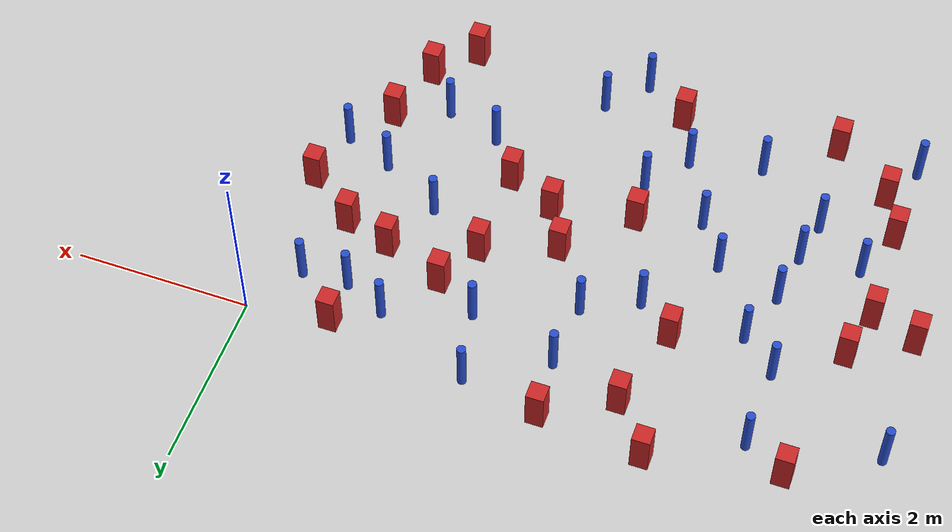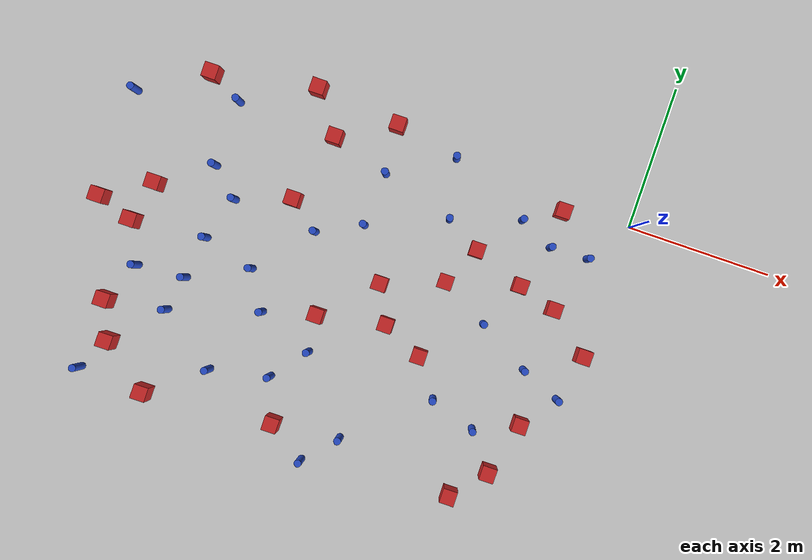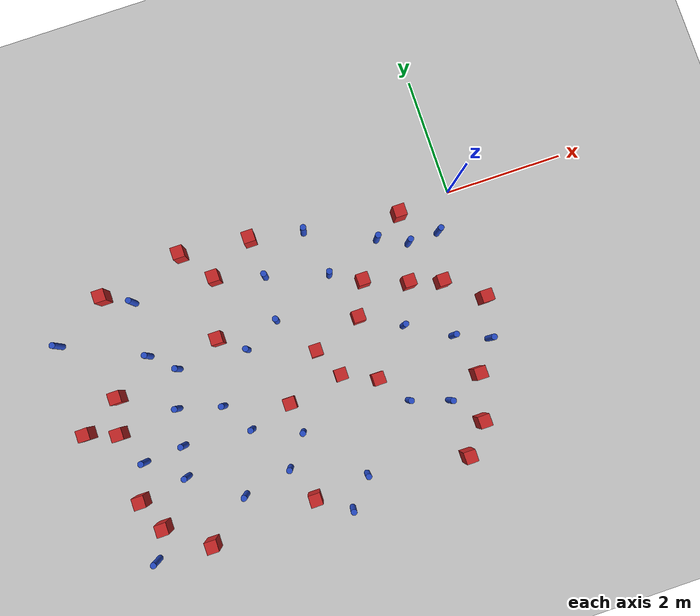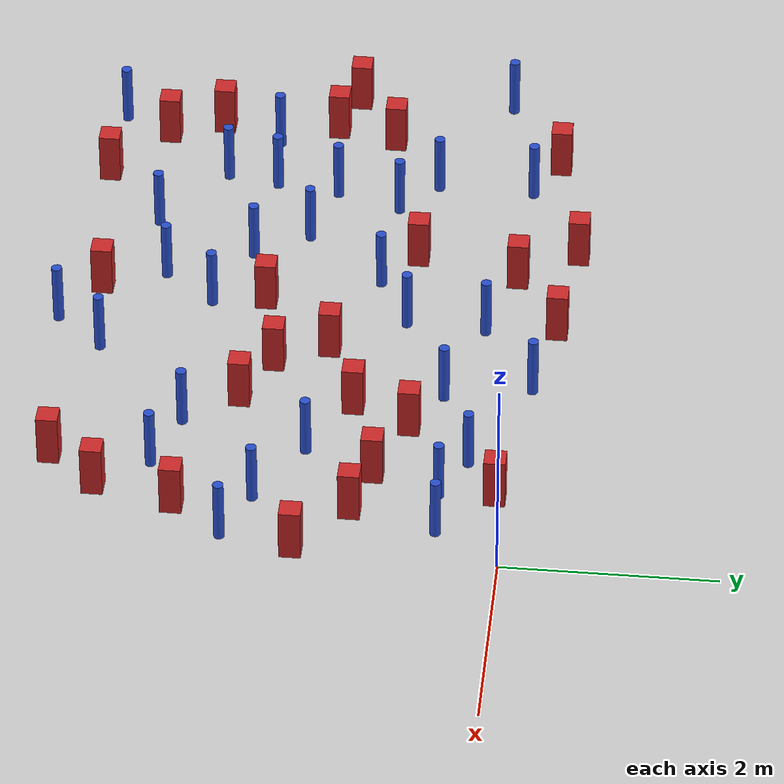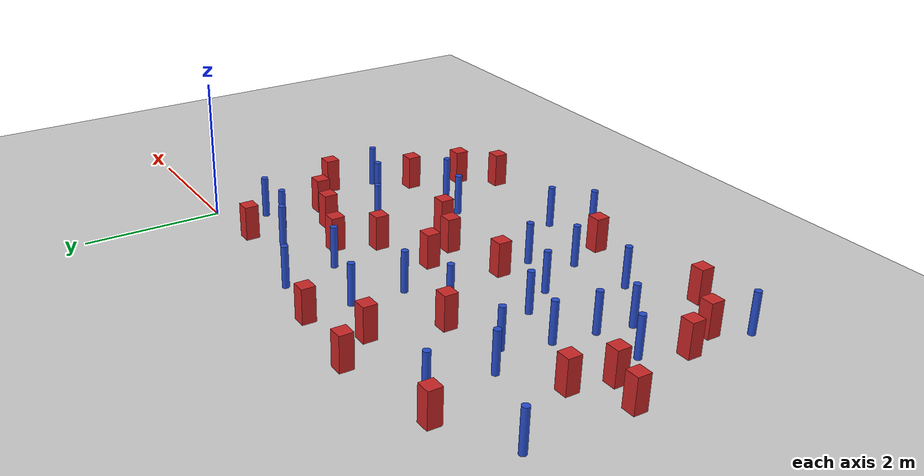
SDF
<sdf version="1.6">
 <world name="default">
  <model name="ground_plane">
   <static>1</static>
   <link name="link">
    <collision name="collision">
     <geometry><plane><normal>0 0 1</normal><size>100 100</size></plane></geometry>
     <surface><friction><ode><mu>100</mu><mu2>50</mu2></ode></friction></surface>
    </collision>
    <visual name="visual">
     <cast_shadows>0</cast_shadows>
     <geometry><plane><normal>0 0 1</normal><size>100 100</size></plane></geometry>
     <material>
      <ambient>1.0 1.0 1.0 1.0</ambient>
      <diffuse>0.8 0.8 0.8 1.0</diffuse>
      <specular>0.01 0.01 0.01 1.000000</specular>
     </material>
    </visual>
   </link>
  </model>
  <model name="pole_obstacle3">
   <static>true</static>
   <pose>-5.39888138162 -2.00570616578 2.88873142074e-08 -9.90536689749e-09 4.60219948991e-07 -1.20965994959e-07</pose>
   <link name="link">
    <pose>0 0 0.3 0 -0 0</pose>
    <inertial>
     <mass>1</mass>
     <inertia><ixx>0.145833</ixx><ixy>0</ixy><ixz>0</ixz><iyy>0.145833</iyy><iyz>0</iyz><izz>0.125</izz></inertia>
    </inertial>
    <collision name="collision">
     <geometry><cylinder><radius>0.05</radius><length>.6</length></cylinder></geometry>
    </collision>
    <visual name="visual">
     <geometry><cylinder><radius>0.05</radius><length>.6</length></cylinder></geometry>
     <material>
      <script><name>Gazebo/Blue</name><uri>file://media/materials/scripts/gazebo.material</uri></script>
     </material>
    </visual>
   </link>
  </model>
  <model name="pole_obstacle4">
   <static>true</static>
   <pose>-1.41537158164 -0.388112318753 2.88873142074e-08 -9.90536689733e-09 4.60219948992e-07 -1.20965994959e-07</pose>
   <link name="link">
    <pose>0 0 0.3 0 -0 0</pose>
    <inertial>
     <mass>1</mass>
     <inertia><ixx>0.145833</ixx><ixy>0</ixy><ixz>0</ixz><iyy>0.145833</iyy><iyz>0</iyz><izz>0.125</izz></inertia>
    </inertial>
    <collision name="collision">
     <geometry><cylinder><radius>0.05</radius><length>.6</length></cylinder></geometry>
    </collision>
    <visual name="visual">
     <geometry><cylinder><radius>0.05</radius><length>.6</length></cylinder></geometry>
     <material>
      <script><name>Gazebo/Blue</name><uri>file://media/materials/scripts/gazebo.material</uri></script>
     </material>
    </visual>
   </link>
  </model>
  <model name="square_post_obstacle3">
   <static>true</static>
   <pose>-3.72602578323 -4.0872533452 8.22691968438e-08 7.2212513382e-06 -7.54495500217e-07 2.29674213826e-05</pose>
   <link name="link">
    <pose>0 0 0.25 0 -0 0</pose>
    <inertial>
     <mass>100</mass>
     <inertia>
      <ixx>0.166667</ixx>
      <ixy>0</ixy>
      <ixz>0</ixz>
      <iyy>0.166667</iyy>
      <iyz>0</iyz>
      <izz>0.166667</izz>
     </inertia>
    </inertial>
    <collision name="collision"><geometry><box><size>.2 .2 .5</size></box></geometry></collision>
    <visual name="visual">
     <geometry><box><size>.2 .2 .5</size></box></geometry>
     <material>
      <script><name>Gazebo/Red</name><uri>file://media/materials/scripts/gazebo.material</uri></script>
     </material>
    </visual>
   </link>
  </model>
  <model name="pole_obstacle10">
   <static>true</static>
   <pose>-0.744563720308 -2.30739177899 2.88873142074e-08 -9.90536689636e-09 4.60219948994e-07 -1.20965994958e-07</pose>
   <link name="link">
    <pose>0 0 0.3 0 -0 0</pose>
    <inertial>
     <mass>1</mass>
     <inertia><ixx>0.145833</ixx><ixy>0</ixy><ixz>0</ixz><iyy>0.145833</iyy><iyz>0</iyz><izz>0.125</izz></inertia>
    </inertial>
    <collision name="collision">
     <geometry><cylinder><radius>0.05</radius><length>.6</length></cylinder></geometry>
    </collision>
    <visual name="visual">
     <geometry><cylinder><radius>0.05</radius><length>.6</length></cylinder></geometry>
     <material>
      <script><name>Gazebo/Blue</name><uri>file://media/materials/scripts/gazebo.material</uri></script>
     </material>
    </visual>
   </link>
  </model>
  <model name="square_post_obstacle11">
   <static>true</static>
   <pose>-2.14693727234 -2.58435467613 8.22691968438e-08 7.2212513382e-06 -7.54495500217e-07 2.29674213826e-05</pose>
   <link name="link">
    <pose>0 0 0.25 0 -0 0</pose>
    <inertial>
     <mass>100</mass>
     <inertia>
      <ixx>0.166667</ixx>
      <ixy>0</ixy>
      <ixz>0</ixz>
      <iyy>0.166667</iyy>
      <iyz>0</iyz>
      <izz>0.166667</izz>
     </inertia>
    </inertial>
    <collision name="collision"><geometry><box><size>.2 .2 .5</size></box></geometry></collision>
    <visual name="visual">
     <geometry><box><size>.2 .2 .5</size></box></geometry>
     <material>
      <script><name>Gazebo/Red</name><uri>file://media/materials/scripts/gazebo.material</uri></script>
     </material>
    </visual>
   </link>
  </model>
  <model name="pole_obstacle15">
   <static>true</static>
   <pose>-2.80426005995 -3.99331555649 2.88873142074e-08 -9.90536690455e-09 4.60219948975e-07 -1.20965994972e-07</pose>
   <link name="link">
    <pose>0 0 0.3 0 -0 0</pose>
    <inertial>
     <mass>1</mass>
     <inertia><ixx>0.145833</ixx><ixy>0</ixy><ixz>0</ixz><iyy>0.145833</iyy><iyz>0</iyz><izz>0.125</izz></inertia>
    </inertial>
    <collision name="collision">
     <geometry><cylinder><radius>0.05</radius><length>.6</length></cylinder></geometry>
    </collision>
    <visual name="visual">
     <geometry><cylinder><radius>0.05</radius><length>.6</length></cylinder></geometry>
     <material>
      <script><name>Gazebo/Blue</name><uri>file://media/materials/scripts/gazebo.material</uri></script>
     </material>
    </visual>
   </link>
  </model>
  <model name="square_post_obstacle12">
   <static>true</static>
   <pose>-1.1600024564 -1.24396540981 8.22691968438e-08 7.2212513382e-06 -7.54495500217e-07 2.29674213826e-05</pose>
   <link name="link">
    <pose>0 0 0.25 0 -0 0</pose>
    <inertial>
     <mass>100</mass>
     <inertia>
      <ixx>0.166667</ixx>
      <ixy>0</ixy>
      <ixz>0</ixz>
      <iyy>0.166667</iyy>
      <iyz>0</iyz>
      <izz>0.166667</izz>
     </inertia>
    </inertial>
    <collision name="collision"><geometry><box><size>.2 .2 .5</size></box></geometry></collision>
    <visual name="visual">
     <geometry><box><size>.2 .2 .5</size></box></geometry>
     <material>
      <script><name>Gazebo/Red</name><uri>file://media/materials/scripts/gazebo.material</uri></script>
     </material>
    </visual>
   </link>
  </model>
  <model name="pole_obstacle16">
   <static>true</static>
   <pose>-6.45074321504 -4.21881022412 2.88873142074e-08 -9.90536690842e-09 4.60219948965e-07 -1.20965994976e-07</pose>
   <link name="link">
    <pose>0 0 0.3 0 -0 0</pose>
    <inertial>
     <mass>1</mass>
     <inertia><ixx>0.145833</ixx><ixy>0</ixy><ixz>0</ixz><iyy>0.145833</iyy><iyz>0</iyz><izz>0.125</izz></inertia>
    </inertial>
    <collision name="collision">
     <geometry><cylinder><radius>0.05</radius><length>.6</length></cylinder></geometry>
    </collision>
    <visual name="visual">
     <geometry><cylinder><radius>0.05</radius><length>.6</length></cylinder></geometry>
     <material>
      <script><name>Gazebo/Blue</name><uri>file://media/materials/scripts/gazebo.material</uri></script>
     </material>
    </visual>
   </link>
  </model>
  <model name="square_post_obstacle13">
   <static>true</static>
   <pose>-0.627202502362 -1.4013469367 8.22691968438e-08 7.2212513382e-06 -7.54495500217e-07 2.29674213826e-05</pose>
   <link name="link">
    <pose>0 0 0.25 0 -0 0</pose>
    <inertial>
     <mass>100</mass>
     <inertia>
      <ixx>0.166667</ixx>
      <ixy>0</ixy>
      <ixz>0</ixz>
      <iyy>0.166667</iyy>
      <iyz>0</iyz>
      <izz>0.166667</izz>
     </inertia>
    </inertial>
    <collision name="collision"><geometry><box><size>.2 .2 .5</size></box></geometry></collision>
    <visual name="visual">
     <geometry><box><size>.2 .2 .5</size></box></geometry>
     <material>
      <script><name>Gazebo/Red</name><uri>file://media/materials/scripts/gazebo.material</uri></script>
     </material>
    </visual>
   </link>
  </model>
  <model name="pole_obstacle25">
   <static>true</static>
   <pose>-5.56865304958 -0.113580184732 2.88873142074e-08 -9.90536689681e-09 4.60219948993e-07 -1.20965994959e-07</pose>
   <link name="link">
    <pose>0 0 0.3 0 -0 0</pose>
    <inertial>
     <mass>1</mass>
     <inertia><ixx>0.145833</ixx><ixy>0</ixy><ixz>0</ixz><iyy>0.145833</iyy><iyz>0</iyz><izz>0.125</izz></inertia>
    </inertial>
    <collision name="collision">
     <geometry><cylinder><radius>0.05</radius><length>.6</length></cylinder></geometry>
    </collision>
    <visual name="visual">
     <geometry><cylinder><radius>0.05</radius><length>.6</length></cylinder></geometry>
     <material>
      <script><name>Gazebo/Blue</name><uri>file://media/materials/scripts/gazebo.material</uri></script>
     </material>
    </visual>
   </link>
  </model>
  <model name="square_post_obstacle23">
   <static>true</static>
   <pose>-5.5193842569 -4.2566935911 8.22691968438e-08 7.2212513382e-06 -7.54495500217e-07 2.29674213826e-05</pose>
   <link name="link">
    <pose>0 0 0.25 0 -0 0</pose>
    <inertial>
     <mass>100</mass>
     <inertia>
      <ixx>0.166667</ixx>
      <ixy>0</ixy>
      <ixz>0</ixz>
      <iyy>0.166667</iyy>
      <iyz>0</iyz>
      <izz>0.166667</izz>
     </inertia>
    </inertial>
    <collision name="collision"><geometry><box><size>.2 .2 .5</size></box></geometry></collision>
    <visual name="visual">
     <geometry><box><size>.2 .2 .5</size></box></geometry>
     <material>
      <script><name>Gazebo/Red</name><uri>file://media/materials/scripts/gazebo.material</uri></script>
     </material>
    </visual>
   </link>
  </model>
  <model name="square_post_obstacle27">
   <static>true</static>
   <pose>-4.17683774603 -0.152954974696 8.22691968438e-08 7.2212513382e-06 -7.54495500217e-07 2.29674213826e-05</pose>
   <link name="link">
    <pose>0 0 0.25 0 -0 0</pose>
    <inertial>
     <mass>100</mass>
     <inertia>
      <ixx>0.166667</ixx>
      <ixy>0</ixy>
      <ixz>0</ixz>
      <iyy>0.166667</iyy>
      <iyz>0</iyz>
      <izz>0.166667</izz>
     </inertia>
    </inertial>
    <collision name="collision"><geometry><box><size>.2 .2 .5</size></box></geometry></collision>
    <visual name="visual">
     <geometry><box><size>.2 .2 .5</size></box></geometry>
     <material>
      <script><name>Gazebo/Red</name><uri>file://media/materials/scripts/gazebo.material</uri></script>
     </material>
    </visual>
   </link>
  </model>
  <model name="square_post_obstacle30">
   <static>true</static>
   <pose>-0.0457896845618 -1.87282870692 8.22691968438e-08 7.2212513382e-06 -7.54495500217e-07 2.29674213826e-05</pose>
   <link name="link">
    <pose>0 0 0.25 0 -0 0</pose>
    <inertial>
     <mass>100</mass>
     <inertia>
      <ixx>0.166667</ixx>
      <ixy>0</ixy>
      <ixz>0</ixz>
      <iyy>0.166667</iyy>
      <iyz>0</iyz>
      <izz>0.166667</izz>
     </inertia>
    </inertial>
    <collision name="collision"><geometry><box><size>.2 .2 .5</size></box></geometry></collision>
    <visual name="visual">
     <geometry><box><size>.2 .2 .5</size></box></geometry>
     <material>
      <script><name>Gazebo/Red</name><uri>file://media/materials/scripts/gazebo.material</uri></script>
     </material>
    </visual>
   </link>
  </model>
  <model name="square_post_obstacle35">
   <static>true</static>
   <pose>-6.42005316863 -2.09950818138 8.22691968438e-08 7.22125133819e-06 -7.54495500217e-07 2.29674213826e-05</pose>
   <link name="link">
    <pose>0 0 0.25 0 -0 0</pose>
    <inertial>
     <mass>100</mass>
     <inertia>
      <ixx>0.166667</ixx>
      <ixy>0</ixy>
      <ixz>0</ixz>
      <iyy>0.166667</iyy>
      <iyz>0</iyz>
      <izz>0.166667</izz>
     </inertia>
    </inertial>
    <collision name="collision"><geometry><box><size>.2 .2 .5</size></box></geometry></collision>
    <visual name="visual">
     <geometry><box><size>.2 .2 .5</size></box></geometry>
     <material>
      <script><name>Gazebo/Red</name><uri>file://media/materials/scripts/gazebo.material</uri></script>
     </material>
    </visual>
   </link>
  </model>
  <model name="pole_obstacle52">
   <static>true</static>
   <pose>-1.77814332348 -3.08026957196 2.88873142074e-08 -9.90536689791e-09 4.6021994899e-07 -1.20965994959e-07</pose>
   <link name="link">
    <pose>0 0 0.3 0 -0 0</pose>
    <inertial>
     <mass>1</mass>
     <inertia><ixx>0.145833</ixx><ixy>0</ixy><ixz>0</ixz><iyy>0.145833</iyy><iyz>0</iyz><izz>0.125</izz></inertia>
    </inertial>
    <collision name="collision">
     <geometry><cylinder><radius>0.05</radius><length>.6</length></cylinder></geometry>
    </collision>
    <visual name="visual">
     <geometry><cylinder><radius>0.05</radius><length>.6</length></cylinder></geometry>
     <material>
      <script><name>Gazebo/Blue</name><uri>file://media/materials/scripts/gazebo.material</uri></script>
     </material>
    </visual>
   </link>
  </model>
  <model name="square_post_obstacle48">
   <static>true</static>
   <pose>-6.93092234201 -1.92982058862 8.22691968438e-08 7.22125133819e-06 -7.54495500217e-07 2.29674213826e-05</pose>
   <link name="link">
    <pose>0 0 0.25 0 -0 0</pose>
    <inertial>
     <mass>100</mass>
     <inertia>
      <ixx>0.166667</ixx>
      <ixy>0</ixy>
      <ixz>0</ixz>
      <iyy>0.166667</iyy>
      <iyz>0</iyz>
      <izz>0.166667</izz>
     </inertia>
    </inertial>
    <collision name="collision"><geometry><box><size>.2 .2 .5</size></box></geometry></collision>
    <visual name="visual">
     <geometry><box><size>.2 .2 .5</size></box></geometry>
     <material>
      <script><name>Gazebo/Red</name><uri>file://media/materials/scripts/gazebo.material</uri></script>
     </material>
    </visual>
   </link>
  </model>
  <model name="pole_obstacle63">
   <static>true</static>
   <pose>-4.78254800262 -3.68335412787 2.88873142074e-08 -9.90536690245e-09 4.6021994898e-07 -1.20965994966e-07</pose>
   <link name="link">
    <pose>0 0 0.3 0 -0 0</pose>
    <inertial>
     <mass>1</mass>
     <inertia><ixx>0.145833</ixx><ixy>0</ixy><ixz>0</ixz><iyy>0.145833</iyy><iyz>0</iyz><izz>0.125</izz></inertia>
    </inertial>
    <collision name="collision">
     <geometry><cylinder><radius>0.05</radius><length>.6</length></cylinder></geometry>
    </collision>
    <visual name="visual">
     <geometry><cylinder><radius>0.05</radius><length>.6</length></cylinder></geometry>
     <material>
      <script><name>Gazebo/Blue</name><uri>file://media/materials/scripts/gazebo.material</uri></script>
     </material>
    </visual>
   </link>
  </model>
  <model name="square_post_obstacle52">
   <static>true</static>
   <pose>-0.55979742919 -3.02214425602 8.22691968438e-08 7.2212513382e-06 -7.54495500217e-07 2.29674213826e-05</pose>
   <link name="link">
    <pose>0 0 0.25 0 -0 0</pose>
    <inertial>
     <mass>100</mass>
     <inertia>
      <ixx>0.166667</ixx>
      <ixy>0</ixy>
      <ixz>0</ixz>
      <iyy>0.166667</iyy>
      <iyz>0</iyz>
      <izz>0.166667</izz>
     </inertia>
    </inertial>
    <collision name="collision"><geometry><box><size>.2 .2 .5</size></box></geometry></collision>
    <visual name="visual">
     <geometry><box><size>.2 .2 .5</size></box></geometry>
     <material>
      <script><name>Gazebo/Red</name><uri>file://media/materials/scripts/gazebo.material</uri></script>
     </material>
    </visual>
   </link>
  </model>
  <model name="pole_obstacle71">
   <static>true</static>
   <pose>-5.48827758834 -2.607385244 2.88873142074e-08 -9.90536690245e-09 4.6021994898e-07 -1.20965994966e-07</pose>
   <link name="link">
    <pose>0 0 0.3 0 -0 0</pose>
    <inertial>
     <mass>1</mass>
     <inertia><ixx>0.145833</ixx><ixy>0</ixy><ixz>0</ixz><iyy>0.145833</iyy><iyz>0</iyz><izz>0.125</izz></inertia>
    </inertial>
    <collision name="collision">
     <geometry><cylinder><radius>0.05</radius><length>.6</length></cylinder></geometry>
    </collision>
    <visual name="visual">
     <geometry><cylinder><radius>0.05</radius><length>.6</length></cylinder></geometry>
     <material>
      <script><name>Gazebo/Blue</name><uri>file://media/materials/scripts/gazebo.material</uri></script>
     </material>
    </visual>
   </link>
  </model>
  <model name="pole_obstacle75">
   <static>true</static>
   <pose>-3.37262185536 -0.393511794584 2.88873142074e-08 -9.90536689307e-09 4.60219949002e-07 -1.20965994954e-07</pose>
   <link name="link">
    <pose>0 0 0.3 0 -0 0</pose>
    <inertial>
     <mass>1</mass>
     <inertia><ixx>0.145833</ixx><ixy>0</ixy><ixz>0</ixz><iyy>0.145833</iyy><iyz>0</iyz><izz>0.125</izz></inertia>
    </inertial>
    <collision name="collision">
     <geometry><cylinder><radius>0.05</radius><length>.6</length></cylinder></geometry>
    </collision>
    <visual name="visual">
     <geometry><cylinder><radius>0.05</radius><length>.6</length></cylinder></geometry>
     <material>
      <script><name>Gazebo/Blue</name><uri>file://media/materials/scripts/gazebo.material</uri></script>
     </material>
    </visual>
   </link>
  </model>
  <model name="square_post_obstacle72">
   <static>true</static>
   <pose>-4.5964467123 0.398581459159 8.22691968438e-08 7.2212513382e-06 -7.54495500217e-07 2.29674213826e-05</pose>
   <link name="link">
    <pose>0 0 0.25 0 -0 0</pose>
    <inertial>
     <mass>100</mass>
     <inertia>
      <ixx>0.166667</ixx>
      <ixy>0</ixy>
      <ixz>0</ixz>
      <iyy>0.166667</iyy>
      <iyz>0</iyz>
      <izz>0.166667</izz>
     </inertia>
    </inertial>
    <collision name="collision"><geometry><box><size>.2 .2 .5</size></box></geometry></collision>
    <visual name="visual">
     <geometry><box><size>.2 .2 .5</size></box></geometry>
     <material>
      <script><name>Gazebo/Red</name><uri>file://media/materials/scripts/gazebo.material</uri></script>
     </material>
    </visual>
   </link>
  </model>
  <model name="pole_obstacle93">
   <static>true</static>
   <pose>-1.46017941572 -1.89355804546 2.88873142074e-08 -9.90536689672e-09 4.60219948993e-07 -1.20965994959e-07</pose>
   <link name="link">
    <pose>0 0 0.3 0 -0 0</pose>
    <inertial>
     <mass>1</mass>
     <inertia><ixx>0.145833</ixx><ixy>0</ixy><ixz>0</ixz><iyy>0.145833</iyy><iyz>0</iyz><izz>0.125</izz></inertia>
    </inertial>
    <collision name="collision">
     <geometry><cylinder><radius>0.05</radius><length>.6</length></cylinder></geometry>
    </collision>
    <visual name="visual">
     <geometry><cylinder><radius>0.05</radius><length>.6</length></cylinder></geometry>
     <material>
      <script><name>Gazebo/Blue</name><uri>file://media/materials/scripts/gazebo.material</uri></script>
     </material>
    </visual>
   </link>
  </model>
  <model name="square_post_obstacle86">
   <static>true</static>
   <pose>-3.42288578647 0.27829976435 8.22691968438e-08 7.2212513382e-06 -7.54495500217e-07 2.29674213826e-05</pose>
   <link name="link">
    <pose>0 0 0.25 0 -0 0</pose>
    <inertial>
     <mass>100</mass>
     <inertia>
      <ixx>0.166667</ixx>
      <ixy>0</ixy>
      <ixz>0</ixz>
      <iyy>0.166667</iyy>
      <iyz>0</iyz>
      <izz>0.166667</izz>
     </inertia>
    </inertial>
    <collision name="collision"><geometry><box><size>.2 .2 .5</size></box></geometry></collision>
    <visual name="visual">
     <geometry><box><size>.2 .2 .5</size></box></geometry>
     <material>
      <script><name>Gazebo/Red</name><uri>file://media/materials/scripts/gazebo.material</uri></script>
     </material>
    </visual>
   </link>
  </model>
  <model name="square_post_obstacle88">
   <static>true</static>
   <pose>-0.755691363849 -3.77128025169 8.22691968438e-08 7.2212513382e-06 -7.54495500217e-07 2.29674213826e-05</pose>
   <link name="link">
    <pose>0 0 0.25 0 -0 0</pose>
    <inertial>
     <mass>100</mass>
     <inertia>
      <ixx>0.166667</ixx>
      <ixy>0</ixy>
      <ixz>0</ixz>
      <iyy>0.166667</iyy>
      <iyz>0</iyz>
      <izz>0.166667</izz>
     </inertia>
    </inertial>
    <collision name="collision"><geometry><box><size>.2 .2 .5</size></box></geometry></collision>
    <visual name="visual">
     <geometry><box><size>.2 .2 .5</size></box></geometry>
     <material>
      <script><name>Gazebo/Red</name><uri>file://media/materials/scripts/gazebo.material</uri></script>
     </material>
    </visual>
   </link>
  </model>
  <model name="pole_obstacle106">
   <static>true</static>
   <pose>-3.20509628754 -4.44281214523 2.88873142074e-08 -9.90536689859e-09 4.60219948989e-07 -1.20965994961e-07</pose>
   <link name="link">
    <pose>0 0 0.3 0 -0 0</pose>
    <inertial>
     <mass>1</mass>
     <inertia><ixx>0.145833</ixx><ixy>0</ixy><ixz>0</ixz><iyy>0.145833</iyy><iyz>0</iyz><izz>0.125</izz></inertia>
    </inertial>
    <collision name="collision">
     <geometry><cylinder><radius>0.05</radius><length>.6</length></cylinder></geometry>
    </collision>
    <visual name="visual">
     <geometry><cylinder><radius>0.05</radius><length>.6</length></cylinder></geometry>
     <material>
      <script><name>Gazebo/Blue</name><uri>file://media/materials/scripts/gazebo.material</uri></script>
     </material>
    </visual>
   </link>
  </model>
  <model name="square_post_obstacle102">
   <static>true</static>
   <pose>-6.19166313539 -3.75081503038 8.22691968438e-08 7.2212513382e-06 -7.54495500217e-07 2.29674213826e-05</pose>
   <link name="link">
    <pose>0 0 0.25 0 -0 0</pose>
    <inertial>
     <mass>100</mass>
     <inertia>
      <ixx>0.166667</ixx>
      <ixy>0</ixy>
      <ixz>0</ixz>
      <iyy>0.166667</iyy>
      <iyz>0</iyz>
      <izz>0.166667</izz>
     </inertia>
    </inertial>
    <collision name="collision"><geometry><box><size>.2 .2 .5</size></box></geometry></collision>
    <visual name="visual">
     <geometry><box><size>.2 .2 .5</size></box></geometry>
     <material>
      <script><name>Gazebo/Red</name><uri>file://media/materials/scripts/gazebo.material</uri></script>
     </material>
    </visual>
   </link>
  </model>
  <model name="square_post_obstacle103">
   <static>true</static>
   <pose>-4.43626181359 -1.12900567275 8.22691968438e-08 7.2212513382e-06 -7.54495500217e-07 2.29674213826e-05</pose>
   <link name="link">
    <pose>0 0 0.25 0 -0 0</pose>
    <inertial>
     <mass>100</mass>
     <inertia>
      <ixx>0.166667</ixx>
      <ixy>0</ixy>
      <ixz>0</ixz>
      <iyy>0.166667</iyy>
      <iyz>0</iyz>
      <izz>0.166667</izz>
     </inertia>
    </inertial>
    <collision name="collision"><geometry><box><size>.2 .2 .5</size></box></geometry></collision>
    <visual name="visual">
     <geometry><box><size>.2 .2 .5</size></box></geometry>
     <material>
      <script><name>Gazebo/Red</name><uri>file://media/materials/scripts/gazebo.material</uri></script>
     </material>
    </visual>
   </link>
  </model>
  <model name="square_post_obstacle110">
   <static>true</static>
   <pose>-1.86808576028 -0.975325696041 8.22691968438e-08 7.2212513382e-06 -7.54495500217e-07 2.29674213826e-05</pose>
   <link name="link">
    <pose>0 0 0.25 0 -0 0</pose>
    <inertial>
     <mass>100</mass>
     <inertia>
      <ixx>0.166667</ixx>
      <ixy>0</ixy>
      <ixz>0</ixz>
      <iyy>0.166667</iyy>
      <iyz>0</iyz>
      <izz>0.166667</izz>
     </inertia>
    </inertial>
    <collision name="collision"><geometry><box><size>.2 .2 .5</size></box></geometry></collision>
    <visual name="visual">
     <geometry><box><size>.2 .2 .5</size></box></geometry>
     <material>
      <script><name>Gazebo/Red</name><uri>file://media/materials/scripts/gazebo.material</uri></script>
     </material>
    </visual>
   </link>
  </model>
  <model name="pole_obstacle115">
   <static>true</static>
   <pose>-3.42306649404 -1.14781812246 2.88873142074e-08 -9.90536691123e-09 4.60219948959e-07 -1.20965994982e-07</pose>
   <link name="link">
    <pose>0 0 0.3 0 -0 0</pose>
    <inertial>
     <mass>1</mass>
     <inertia><ixx>0.145833</ixx><ixy>0</ixy><ixz>0</ixz><iyy>0.145833</iyy><iyz>0</iyz><izz>0.125</izz></inertia>
    </inertial>
    <collision name="collision">
     <geometry><cylinder><radius>0.05</radius><length>.6</length></cylinder></geometry>
    </collision>
    <visual name="visual">
     <geometry><cylinder><radius>0.05</radius><length>.6</length></cylinder></geometry>
     <material>
      <script><name>Gazebo/Blue</name><uri>file://media/materials/scripts/gazebo.material</uri></script>
     </material>
    </visual>
   </link>
  </model>
  <model name="square_post_obstacle112">
   <static>true</static>
   <pose>-2.13136110235 -1.52149596882 8.22691968438e-08 7.2212513382e-06 -7.54495500217e-07 2.29674213826e-05</pose>
   <link name="link">
    <pose>0 0 0.25 0 -0 0</pose>
    <inertial>
     <mass>100</mass>
     <inertia>
      <ixx>0.166667</ixx>
      <ixy>0</ixy>
      <ixz>0</ixz>
      <iyy>0.166667</iyy>
      <iyz>0</iyz>
      <izz>0.166667</izz>
     </inertia>
    </inertial>
    <collision name="collision"><geometry><box><size>.2 .2 .5</size></box></geometry></collision>
    <visual name="visual">
     <geometry><box><size>.2 .2 .5</size></box></geometry>
     <material>
      <script><name>Gazebo/Red</name><uri>file://media/materials/scripts/gazebo.material</uri></script>
     </material>
    </visual>
   </link>
  </model>
  <model name="pole_obstacle126">
   <static>true</static>
   <pose>-0.410415228674 -0.59873753291 2.88873142074e-08 -9.9053668986e-09 4.60219948989e-07 -1.20965994961e-07</pose>
   <link name="link">
    <pose>0 0 0.3 0 -0 0</pose>
    <inertial>
     <mass>1</mass>
     <inertia><ixx>0.145833</ixx><ixy>0</ixy><ixz>0</ixz><iyy>0.145833</iyy><iyz>0</iyz><izz>0.125</izz></inertia>
    </inertial>
    <collision name="collision">
     <geometry><cylinder><radius>0.05</radius><length>.6</length></cylinder></geometry>
    </collision>
    <visual name="visual">
     <geometry><cylinder><radius>0.05</radius><length>.6</length></cylinder></geometry>
     <material>
      <script><name>Gazebo/Blue</name><uri>file://media/materials/scripts/gazebo.material</uri></script>
     </material>
    </visual>
   </link>
  </model>
  <model name="pole_obstacle128">
   <static>true</static>
   <pose>-2.35458848845 -0.697737269478 2.88873142074e-08 -9.90536689285e-09 4.60219949002e-07 -1.20965994953e-07</pose>
   <link name="link">
    <pose>0 0 0.3 0 -0 0</pose>
    <inertial>
     <mass>1</mass>
     <inertia><ixx>0.145833</ixx><ixy>0</ixy><ixz>0</ixz><iyy>0.145833</iyy><iyz>0</iyz><izz>0.125</izz></inertia>
    </inertial>
    <collision name="collision">
     <geometry><cylinder><radius>0.05</radius><length>.6</length></cylinder></geometry>
    </collision>
    <visual name="visual">
     <geometry><cylinder><radius>0.05</radius><length>.6</length></cylinder></geometry>
     <material>
      <script><name>Gazebo/Blue</name><uri>file://media/materials/scripts/gazebo.material</uri></script>
     </material>
    </visual>
   </link>
  </model>
  <model name="square_post_obstacle128">
   <static>true</static>
   <pose>-2.70414143254 -2.32755164084 8.22691968438e-08 7.2212513382e-06 -7.54495500217e-07 2.29674213826e-05</pose>
   <link name="link">
    <pose>0 0 0.25 0 -0 0</pose>
    <inertial>
     <mass>100</mass>
     <inertia>
      <ixx>0.166667</ixx>
      <ixy>0</ixy>
      <ixz>0</ixz>
      <iyy>0.166667</iyy>
      <iyz>0</iyz>
      <izz>0.166667</izz>
     </inertia>
    </inertial>
    <collision name="collision"><geometry><box><size>.2 .2 .5</size></box></geometry></collision>
    <visual name="visual">
     <geometry><box><size>.2 .2 .5</size></box></geometry>
     <material>
      <script><name>Gazebo/Red</name><uri>file://media/materials/scripts/gazebo.material</uri></script>
     </material>
    </visual>
   </link>
  </model>
  <model name="pole_obstacle133">
   <static>true</static>
   <pose>-4.35294765247 -2.7111679781 2.88873142074e-08 -9.90536690245e-09 4.6021994898e-07 -1.20965994966e-07</pose>
   <link name="link">
    <pose>0 0 0.3 0 -0 0</pose>
    <inertial>
     <mass>1</mass>
     <inertia><ixx>0.145833</ixx><ixy>0</ixy><ixz>0</ixz><iyy>0.145833</iyy><iyz>0</iyz><izz>0.125</izz></inertia>
    </inertial>
    <collision name="collision">
     <geometry><cylinder><radius>0.05</radius><length>.6</length></cylinder></geometry>
    </collision>
    <visual name="visual">
     <geometry><cylinder><radius>0.05</radius><length>.6</length></cylinder></geometry>
     <material>
      <script><name>Gazebo/Blue</name><uri>file://media/materials/scripts/gazebo.material</uri></script>
     </material>
    </visual>
   </link>
  </model>
  <model name="pole_obstacle146">
   <static>true</static>
   <pose>-5.19852375465 -1.39018213298 2.88873142074e-08 -9.90536689445e-09 4.60219948999e-07 -1.20965994956e-07</pose>
   <link name="link">
    <pose>0 0 0.3 0 -0 0</pose>
    <inertial>
     <mass>1</mass>
     <inertia><ixx>0.145833</ixx><ixy>0</ixy><ixz>0</ixz><iyy>0.145833</iyy><iyz>0</iyz><izz>0.125</izz></inertia>
    </inertial>
    <collision name="collision">
     <geometry><cylinder><radius>0.05</radius><length>.6</length></cylinder></geometry>
    </collision>
    <visual name="visual">
     <geometry><cylinder><radius>0.05</radius><length>.6</length></cylinder></geometry>
     <material>
      <script><name>Gazebo/Blue</name><uri>file://media/materials/scripts/gazebo.material</uri></script>
     </material>
    </visual>
   </link>
  </model>
  <model name="pole_obstacle147">
   <static>true</static>
   <pose>-6.94240164128 -0.41576295334 2.88873142074e-08 -9.90536689981e-09 4.60219948986e-07 -1.20965994962e-07</pose>
   <link name="link">
    <pose>0 0 0.3 0 -0 0</pose>
    <inertial>
     <mass>1</mass>
     <inertia><ixx>0.145833</ixx><ixy>0</ixy><ixz>0</ixz><iyy>0.145833</iyy><iyz>0</iyz><izz>0.125</izz></inertia>
    </inertial>
    <collision name="collision">
     <geometry><cylinder><radius>0.05</radius><length>.6</length></cylinder></geometry>
    </collision>
    <visual name="visual">
     <geometry><cylinder><radius>0.05</radius><length>.6</length></cylinder></geometry>
     <material>
      <script><name>Gazebo/Blue</name><uri>file://media/materials/scripts/gazebo.material</uri></script>
     </material>
    </visual>
   </link>
  </model>
  <model name="square_post_obstacle146">
   <static>true</static>
   <pose>-2.96142570768 -1.82869540794 8.22691968438e-08 7.2212513382e-06 -7.54495500217e-07 2.29674213826e-05</pose>
   <link name="link">
    <pose>0 0 0.25 0 -0 0</pose>
    <inertial>
     <mass>100</mass>
     <inertia>
      <ixx>0.166667</ixx>
      <ixy>0</ixy>
      <ixz>0</ixz>
      <iyy>0.166667</iyy>
      <iyz>0</iyz>
      <izz>0.166667</izz>
     </inertia>
    </inertial>
    <collision name="collision"><geometry><box><size>.2 .2 .5</size></box></geometry></collision>
    <visual name="visual">
     <geometry><box><size>.2 .2 .5</size></box></geometry>
     <material>
      <script><name>Gazebo/Red</name><uri>file://media/materials/scripts/gazebo.material</uri></script>
     </material>
    </visual>
   </link>
  </model>
  <model name="square_post_obstacle148">
   <static>true</static>
   <pose>-1.1579805395 -4.23145390632 8.22691968438e-08 7.2212513382e-06 -7.54495500217e-07 2.29674213826e-05</pose>
   <link name="link">
    <pose>0 0 0.25 0 -0 0</pose>
    <inertial>
     <mass>100</mass>
     <inertia>
      <ixx>0.166667</ixx>
      <ixy>0</ixy>
      <ixz>0</ixz>
      <iyy>0.166667</iyy>
      <iyz>0</iyz>
      <izz>0.166667</izz>
     </inertia>
    </inertial>
    <collision name="collision"><geometry><box><size>.2 .2 .5</size></box></geometry></collision>
    <visual name="visual">
     <geometry><box><size>.2 .2 .5</size></box></geometry>
     <material>
      <script><name>Gazebo/Red</name><uri>file://media/materials/scripts/gazebo.material</uri></script>
     </material>
    </visual>
   </link>
  </model>
  <model name="pole_obstacle153">
   <static>true</static>
   <pose>-5.58853400238 -3.10152396901 2.88873142074e-08 -9.90536690245e-09 4.6021994898e-07 -1.20965994966e-07</pose>
   <link name="link">
    <pose>0 0 0.3 0 -0 0</pose>
    <inertial>
     <mass>1</mass>
     <inertia><ixx>0.145833</ixx><ixy>0</ixy><ixz>0</ixz><iyy>0.145833</iyy><iyz>0</iyz><izz>0.125</izz></inertia>
    </inertial>
    <collision name="collision">
     <geometry><cylinder><radius>0.05</radius><length>.6</length></cylinder></geometry>
    </collision>
    <visual name="visual">
     <geometry><cylinder><radius>0.05</radius><length>.6</length></cylinder></geometry>
     <material>
      <script><name>Gazebo/Blue</name><uri>file://media/materials/scripts/gazebo.material</uri></script>
     </material>
    </visual>
   </link>
  </model>
  <model name="pole_obstacle161">
   <static>true</static>
   <pose>-3.58080747374 -3.02025851253 2.88873142074e-08 -9.90536689597e-09 4.60219948995e-07 -1.20965994957e-07</pose>
   <link name="link">
    <pose>0 0 0.3 0 -0 0</pose>
    <inertial>
     <mass>1</mass>
     <inertia><ixx>0.145833</ixx><ixy>0</ixy><ixz>0</ixz><iyy>0.145833</iyy><iyz>0</iyz><izz>0.125</izz></inertia>
    </inertial>
    <collision name="collision">
     <geometry><cylinder><radius>0.05</radius><length>.6</length></cylinder></geometry>
    </collision>
    <visual name="visual">
     <geometry><cylinder><radius>0.05</radius><length>.6</length></cylinder></geometry>
     <material>
      <script><name>Gazebo/Blue</name><uri>file://media/materials/scripts/gazebo.material</uri></script>
     </material>
    </visual>
   </link>
  </model>
  <model name="square_post_obstacle156">
   <static>true</static>
   <pose>-0.938591452658 -0.102941706612 8.22691968438e-08 7.2212513382e-06 -7.54495500217e-07 2.29674213826e-05</pose>
   <link name="link">
    <pose>0 0 0.25 0 -0 0</pose>
    <inertial>
     <mass>100</mass>
     <inertia>
      <ixx>0.166667</ixx>
      <ixy>0</ixy>
      <ixz>0</ixz>
      <iyy>0.166667</iyy>
      <iyz>0</iyz>
      <izz>0.166667</izz>
     </inertia>
    </inertial>
    <collision name="collision"><geometry><box><size>.2 .2 .5</size></box></geometry></collision>
    <visual name="visual">
     <geometry><box><size>.2 .2 .5</size></box></geometry>
     <material>
      <script><name>Gazebo/Red</name><uri>file://media/materials/scripts/gazebo.material</uri></script>
     </material>
    </visual>
   </link>
  </model>
  <model name="pole_obstacle170">
   <static>true</static>
   <pose>-2.53152415148 0.116042119383 2.88873142074e-08 -9.90536689632e-09 4.60219948994e-07 -1.20965994958e-07</pose>
   <link name="link">
    <pose>0 0 0.3 0 -0 0</pose>
    <inertial>
     <mass>1</mass>
     <inertia><ixx>0.145833</ixx><ixy>0</ixy><ixz>0</ixz><iyy>0.145833</iyy><iyz>0</iyz><izz>0.125</izz></inertia>
    </inertial>
    <collision name="collision">
     <geometry><cylinder><radius>0.05</radius><length>.6</length></cylinder></geometry>
    </collision>
    <visual name="visual">
     <geometry><cylinder><radius>0.05</radius><length>.6</length></cylinder></geometry>
     <material>
      <script><name>Gazebo/Blue</name><uri>file://media/materials/scripts/gazebo.material</uri></script>
     </material>
    </visual>
   </link>
  </model>
  <model name="pole_obstacle177">
   <static>true</static>
   <pose>-0.187159980051 -2.54112048108 2.88873142074e-08 -9.90536689569e-09 4.60219948995e-07 -1.20965994955e-07</pose>
   <link name="link">
    <pose>0 0 0.3 0 -0 0</pose>
    <inertial>
     <mass>1</mass>
     <inertia><ixx>0.145833</ixx><ixy>0</ixy><ixz>0</ixz><iyy>0.145833</iyy><iyz>0</iyz><izz>0.125</izz></inertia>
    </inertial>
    <collision name="collision">
     <geometry><cylinder><radius>0.05</radius><length>.6</length></cylinder></geometry>
    </collision>
    <visual name="visual">
     <geometry><cylinder><radius>0.05</radius><length>.6</length></cylinder></geometry>
     <material>
      <script><name>Gazebo/Blue</name><uri>file://media/materials/scripts/gazebo.material</uri></script>
     </material>
    </visual>
   </link>
  </model>
  <model name="pole_obstacle179">
   <static>true</static>
   <pose>-4.67867874041 -2.20255224463 2.88873142074e-08 -9.90536690245e-09 4.6021994898e-07 -1.20965994966e-07</pose>
   <link name="link">
    <pose>0 0 0.3 0 -0 0</pose>
    <inertial>
     <mass>1</mass>
     <inertia><ixx>0.145833</ixx><ixy>0</ixy><ixz>0</ixz><iyy>0.145833</iyy><iyz>0</iyz><izz>0.125</izz></inertia>
    </inertial>
    <collision name="collision">
     <geometry><cylinder><radius>0.05</radius><length>.6</length></cylinder></geometry>
    </collision>
    <visual name="visual">
     <geometry><cylinder><radius>0.05</radius><length>.6</length></cylinder></geometry>
     <material>
      <script><name>Gazebo/Blue</name><uri>file://media/materials/scripts/gazebo.material</uri></script>
     </material>
    </visual>
   </link>
  </model>
  <model name="pole_obstacle182">
   <static>true</static>
   <pose>-6.16641572197 -2.66169322596 2.88873142074e-08 -9.90536690245e-09 4.6021994898e-07 -1.20965994966e-07</pose>
   <link name="link">
    <pose>0 0 0.3 0 -0 0</pose>
    <inertial>
     <mass>1</mass>
     <inertia><ixx>0.145833</ixx><ixy>0</ixy><ixz>0</ixz><iyy>0.145833</iyy><iyz>0</iyz><izz>0.125</izz></inertia>
    </inertial>
    <collision name="collision">
     <geometry><cylinder><radius>0.05</radius><length>.6</length></cylinder></geometry>
    </collision>
    <visual name="visual">
     <geometry><cylinder><radius>0.05</radius><length>.6</length></cylinder></geometry>
     <material>
      <script><name>Gazebo/Blue</name><uri>file://media/materials/scripts/gazebo.material</uri></script>
     </material>
    </visual>
   </link>
  </model>
  <model name="square_post_obstacle185">
   <static>true</static>
   <pose>-3.63502165979 -2.50765349281 8.22691968438e-08 7.2212513382e-06 -7.54495500217e-07 2.29674213826e-05</pose>
   <link name="link">
    <pose>0 0 0.25 0 -0 0</pose>
    <inertial>
     <mass>100</mass>
     <inertia>
      <ixx>0.166667</ixx>
      <ixy>0</ixy>
      <ixz>0</ixz>
      <iyy>0.166667</iyy>
      <iyz>0</iyz>
      <izz>0.166667</izz>
     </inertia>
    </inertial>
    <collision name="collision"><geometry><box><size>.2 .2 .5</size></box></geometry></collision>
    <visual name="visual">
     <geometry><box><size>.2 .2 .5</size></box></geometry>
     <material>
      <script><name>Gazebo/Red</name><uri>file://media/materials/scripts/gazebo.material</uri></script>
     </material>
    </visual>
   </link>
  </model>
  <model name="square_post_obstacle201">
   <static>true</static>
   <pose>-6.40586169151 -3.23381712184 8.22691968438e-08 7.2212513382e-06 -7.54495500217e-07 2.29674213826e-05</pose>
   <link name="link">
    <pose>0 0 0.25 0 -0 0</pose>
    <inertial>
     <mass>100</mass>
     <inertia>
      <ixx>0.166667</ixx>
      <ixy>0</ixy>
      <ixz>0</ixz>
      <iyy>0.166667</iyy>
      <iyz>0</iyz>
      <izz>0.166667</izz>
     </inertia>
    </inertial>
    <collision name="collision"><geometry><box><size>.2 .2 .5</size></box></geometry></collision>
    <visual name="visual">
     <geometry><box><size>.2 .2 .5</size></box></geometry>
     <material>
      <script><name>Gazebo/Red</name><uri>file://media/materials/scripts/gazebo.material</uri></script>
     </material>
    </visual>
   </link>
  </model>
  <model name="pole_obstacle192">
   <static>true</static>
   <pose>-3.96508976085 -3.50457050313 2.88873142074e-08 -9.90536692414e-09 4.60219948928e-07 -1.20965994989e-07</pose>
   <link name="link">
    <pose>0 0 0.3 0 -0 0</pose>
    <inertial>
     <mass>1</mass>
     <inertia><ixx>0.145833</ixx><ixy>0</ixy><ixz>0</ixz><iyy>0.145833</iyy><iyz>0</iyz><izz>0.125</izz></inertia>
    </inertial>
    <collision name="collision">
     <geometry><cylinder><radius>0.05</radius><length>.6</length></cylinder></geometry>
    </collision>
    <visual name="visual">
     <geometry><cylinder><radius>0.05</radius><length>.6</length></cylinder></geometry>
     <material>
      <script><name>Gazebo/Blue</name><uri>file://media/materials/scripts/gazebo.material</uri></script>
     </material>
    </visual>
   </link>
  </model>
  <model name="square_post_obstacle205">
   <static>true</static>
   <pose>-6.27557540936 -1.52377848304 8.22691968438e-08 7.2212513382e-06 -7.54495500217e-07 2.29674213826e-05</pose>
   <link name="link">
    <pose>0 0 0.25 0 -0 0</pose>
    <inertial>
     <mass>100</mass>
     <inertia>
      <ixx>0.166667</ixx>
      <ixy>0</ixy>
      <ixz>0</ixz>
      <iyy>0.166667</iyy>
      <iyz>0</iyz>
      <izz>0.166667</izz>
     </inertia>
    </inertial>
    <collision name="collision"><geometry><box><size>.2 .2 .5</size></box></geometry></collision>
    <visual name="visual">
     <geometry><box><size>.2 .2 .5</size></box></geometry>
     <material>
      <script><name>Gazebo/Red</name><uri>file://media/materials/scripts/gazebo.material</uri></script>
     </material>
    </visual>
   </link>
  </model>
  <model name="pole_obstacle197">
   <static>true</static>
   <pose>-4.02649232496 -1.45100507046 2.88873142074e-08 -9.9053668946e-09 4.60219948998e-07 -1.20965994956e-07</pose>
   <link name="link">
    <pose>0 0 0.3 0 -0 0</pose>
    <inertial>
     <mass>1</mass>
     <inertia><ixx>0.145833</ixx><ixy>0</ixy><ixz>0</ixz><iyy>0.145833</iyy><iyz>0</iyz><izz>0.125</izz></inertia>
    </inertial>
    <collision name="collision">
     <geometry><cylinder><radius>0.05</radius><length>.6</length></cylinder></geometry>
    </collision>
    <visual name="visual">
     <geometry><cylinder><radius>0.05</radius><length>.6</length></cylinder></geometry>
     <material>
      <script><name>Gazebo/Blue</name><uri>file://media/materials/scripts/gazebo.material</uri></script>
     </material>
    </visual>
   </link>
  </model>
  <model name="pole_obstacle202">
   <static>true</static>
   <pose>-0.937161678005 -0.617361387904 2.88873142074e-08 -9.90536689967e-09 4.60219948986e-07 -1.20965994963e-07</pose>
   <link name="link">
    <pose>0 0 0.3 0 -0 0</pose>
    <inertial>
     <mass>1</mass>
     <inertia><ixx>0.145833</ixx><ixy>0</ixy><ixz>0</ixz><iyy>0.145833</iyy><iyz>0</iyz><izz>0.125</izz></inertia>
    </inertial>
    <collision name="collision">
     <geometry><cylinder><radius>0.05</radius><length>.6</length></cylinder></geometry>
    </collision>
    <visual name="visual">
     <geometry><cylinder><radius>0.05</radius><length>.6</length></cylinder></geometry>
     <material>
      <script><name>Gazebo/Blue</name><uri>file://media/materials/scripts/gazebo.material</uri></script>
     </material>
    </visual>
   </link>
  </model>
  <model name="pole_obstacle204">
   <static>true</static>
   <pose>-1.14296414129 -3.2929386698 2.88873142074e-08 -9.90536689791e-09 4.6021994899e-07 -1.20965994959e-07</pose>
   <link name="link">
    <pose>0 0 0.3 0 -0 0</pose>
    <inertial>
     <mass>1</mass>
     <inertia><ixx>0.145833</ixx><ixy>0</ixy><ixz>0</ixz><iyy>0.145833</iyy><iyz>0</iyz><izz>0.125</izz></inertia>
    </inertial>
    <collision name="collision">
     <geometry><cylinder><radius>0.05</radius><length>.6</length></cylinder></geometry>
    </collision>
    <visual name="visual">
     <geometry><cylinder><radius>0.05</radius><length>.6</length></cylinder></geometry>
     <material>
      <script><name>Gazebo/Blue</name><uri>file://media/materials/scripts/gazebo.material</uri></script>
     </material>
    </visual>
   </link>
  </model>
  <model name="square_post_obstacle207">
   <static>true</static>
   <pose>-6.02290602544 0.125027681753 8.22691968438e-08 7.2212513382e-06 -7.54495500217e-07 2.29674213826e-05</pose>
   <link name="link">
    <pose>0 0 0.25 0 -0 0</pose>
    <inertial>
     <mass>100</mass>
     <inertia>
      <ixx>0.166667</ixx>
      <ixy>0</ixy>
      <ixz>0</ixz>
      <iyy>0.166667</iyy>
      <iyz>0</iyz>
      <izz>0.166667</izz>
     </inertia>
    </inertial>
    <collision name="collision"><geometry><box><size>.2 .2 .5</size></box></geometry></collision>
    <visual name="visual">
     <geometry><box><size>.2 .2 .5</size></box></geometry>
     <material>
      <script><name>Gazebo/Red</name><uri>file://media/materials/scripts/gazebo.material</uri></script>
     </material>
    </visual>
   </link>
  </model>
  <model name="pole_obstacle216">
   <static>true</static>
   <pose>-5.59356999087 -1.03609997959 2.88873142074e-08 -9.90536689512e-09 4.60219948997e-07 -1.20965994956e-07</pose>
   <link name="link">
    <pose>0 0 0.3 0 -0 0</pose>
    <inertial>
     <mass>1</mass>
     <inertia><ixx>0.145833</ixx><ixy>0</ixy><ixz>0</ixz><iyy>0.145833</iyy><iyz>0</iyz><izz>0.125</izz></inertia>
    </inertial>
    <collision name="collision">
     <geometry><cylinder><radius>0.05</radius><length>.6</length></cylinder></geometry>
    </collision>
    <visual name="visual">
     <geometry><cylinder><radius>0.05</radius><length>.6</length></cylinder></geometry>
     <material>
      <script><name>Gazebo/Blue</name><uri>file://media/materials/scripts/gazebo.material</uri></script>
     </material>
    </visual>
   </link>
  </model>
 </world>
</sdf>
